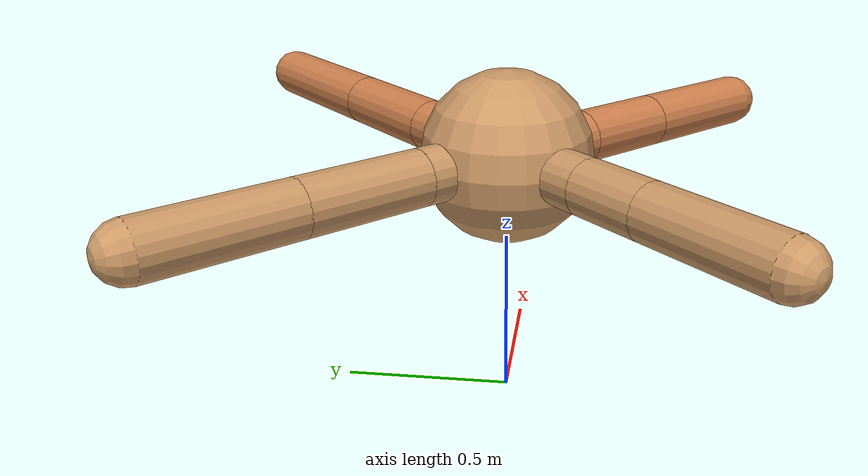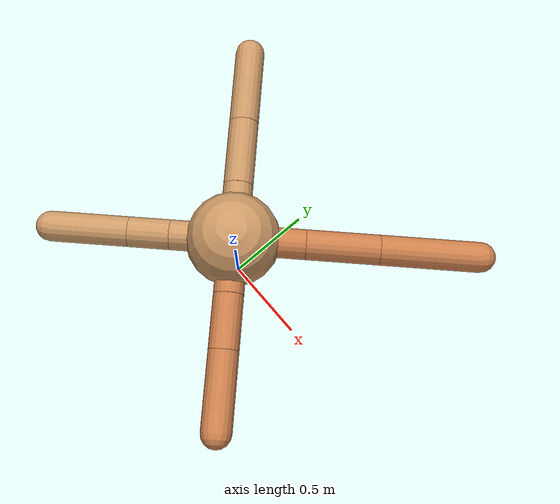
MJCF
<mujoco model="ant">
  <compiler angle="degree" coordinate="local" inertiafromgeom="true" />
  <option integrator="RK4" timestep="0.01" />
  <custom>
    <numeric data="0.0 0.0 0.55 1.0 0.0 0.0 0.0 0.0 1.0 0.0 -1.0 0.0 -1.0 0.0 1.0" name="init_qpos" />
  </custom>
  <default>
    <joint armature="1" damping="1" limited="true" />
    <geom conaffinity="0" condim="3" density="5.0" friction="1.5 0.1 0.1" margin="0.01" rgba="0.8 0.6 0.4 1" />
  </default>
  <worldbody>
    <body name="torso" pos="0 0 0.75">
      <geom name="torso_geom" pos="0 0 0" size="0.25" type="sphere" />

      <body name="front_left_leg" pos="0 0 0">
        <geom fromto="0.0 0.0 0.0 0.26779025206229184 0.26779025206229184 0.0" name="aux_1_geom" size="0.08" type="capsule" rgba=".8 .5 .3 1" />
        <body name="aux_1" pos="0.26779025206229184 0.26779025206229184 0.0">
          <joint axis="0 0 1" name="hip_1" pos="0.0 0.0 0.0" range="-40 40" type="hinge" />
          <geom fromto="0.0 0.0 0.0 0.27224165256673877 0.27224165256673877 0.0" name="left_leg_geom" size="0.08" type="capsule" rgba=".8 .5 .3 1" />
          <body pos="0.27224165256673877 0.27224165256673877 0.0" name="front_left_foot">
            <joint axis="-1 1 0" name="ankle_1" pos="0.0 0.0 0.0" range="30 100" type="hinge" />
            <geom fromto="0.0 0.0 0.0 0.37009546526216086 0.37009546526216086 0.0" name="left_ankle_geom" size="0.08" type="capsule" rgba=".8 .5 .3 1" />
          </body>
        </body>
      </body>
      <body name="front_right_leg" pos="0 0 0">
        <geom fromto="0.0 0.0 0.0 -0.21186608620250197 0.21186608620250197 0.0" name="aux_2_geom" size="0.08" type="capsule" />
        <body name="aux_2" pos="-0.21186608620250197 0.21186608620250197 0.0">
          <joint axis="0 0 1" name="hip_2" pos="0.0 0.0 0.0" range="-40 40" type="hinge" />
          <geom fromto="0.0 0.0 0.0 -0.2539411500724959 0.2539411500724959 0.0" name="right_leg_geom" size="0.08" type="capsule" />
          <body pos="-0.2539411500724959 0.2539411500724959 0.0" name="front_right_foot">
            <joint axis="1 1 0" name="ankle_2" pos="0.0 0.0 0.0" range="-100 -30" type="hinge" />
            <geom fromto="0.0 0.0 0.0 -0.2955384604304659 0.2955384604304659 0.0" name="right_ankle_geom" size="0.08" type="capsule" />
          </body>
        </body>
      </body>
      <body name="left_back_leg" pos="0 0 0">
        <geom fromto="0.0 0.0 0.0 -0.23495354814964886 -0.23495354814964886 0.0" name="aux_3_geom" size="0.08" type="capsule" />
        <body name="aux_3" pos="-0.23495354814964886 -0.23495354814964886 0.0">
          <joint axis="0 0 1" name="hip_3" pos="0.0 0.0 0.0" range="-40 40" type="hinge" />
          <geom fromto="0.0 0.0 0.0 -0.1539372963460758 -0.1539372963460758 0.0" name="back_leg_geom" size="0.08" type="capsule" />
          <body pos="-0.1539372963460758 -0.1539372963460758 0.0" name="left_back_foot">
            <joint axis="-1 1 0" name="ankle_3" pos="0.0 0.0 0.0" range="-100 -30" type="hinge" />
            <geom fromto="0.0 0.0 0.0 -0.2906755123786381 -0.2906755123786381 0.0" name="third_ankle_geom" size="0.08" type="capsule" />
          </body>
        </body>
      </body>
      <body name="right_back_leg" pos="0 0 0">
        <geom fromto="0.0 0.0 0.0 0.20696827042952007 -0.20696827042952007 0.0" name="aux_4_geom" size="0.08" type="capsule" rgba=".8 .5 .3 1" />
        <body name="aux_4" pos="0.20696827042952007 -0.20696827042952007 0.0">
          <joint axis="0 0 1" name="hip_4" pos="0.0 0.0 0.0" range="-40 40" type="hinge" />
          <geom fromto="0.0 0.0 0.0 0.2019764764190827 -0.2019764764190827 0.0" name="rightback_leg_geom" size="0.08" type="capsule" rgba=".8 .5 .3 1" />
          <body pos="0.2019764764190827 -0.2019764764190827 0.0" name="right_back_foot">
            <joint axis="1 1 0" name="ankle_4" pos="0.0 0.0 0.0" range="30 100" type="hinge" />
            <geom fromto="0.0 0.0 0.0 0.28751122538525187 -0.28751122538525187 0.0" name="fourth_ankle_geom" size="0.08" type="capsule" rgba=".8 .5 .3 1" />
          </body>
        </body>
      </body>
    </body>
  </worldbody>
  <actuator>
    <motor ctrllimited="true" ctrlrange="-1.0 1.0" joint="hip_4" gear="150" />
    <motor ctrllimited="true" ctrlrange="-1.0 1.0" joint="ankle_4" gear="150" />
    <motor ctrllimited="true" ctrlrange="-1.0 1.0" joint="hip_1" gear="150" />
    <motor ctrllimited="true" ctrlrange="-1.0 1.0" joint="ankle_1" gear="150" />
    <motor ctrllimited="true" ctrlrange="-1.0 1.0" joint="hip_2" gear="150" />
    <motor ctrllimited="true" ctrlrange="-1.0 1.0" joint="ankle_2" gear="150" />
    <motor ctrllimited="true" ctrlrange="-1.0 1.0" joint="hip_3" gear="150" />
    <motor ctrllimited="true" ctrlrange="-1.0 1.0" joint="ankle_3" gear="150" />
  </actuator>
</mujoco>
